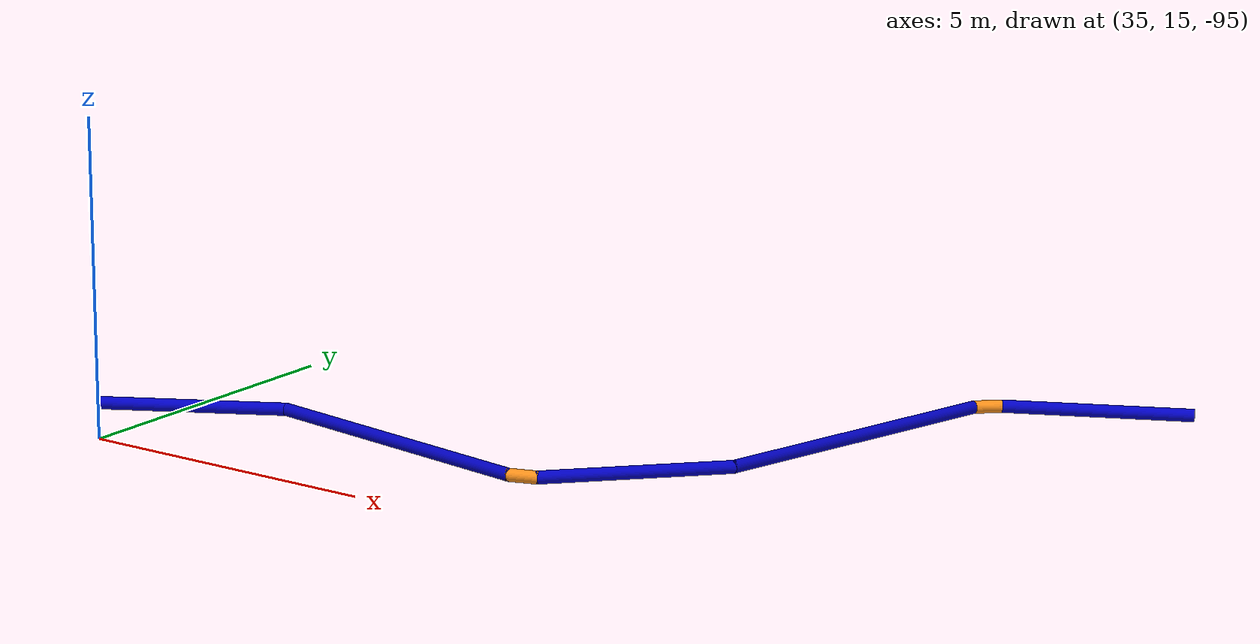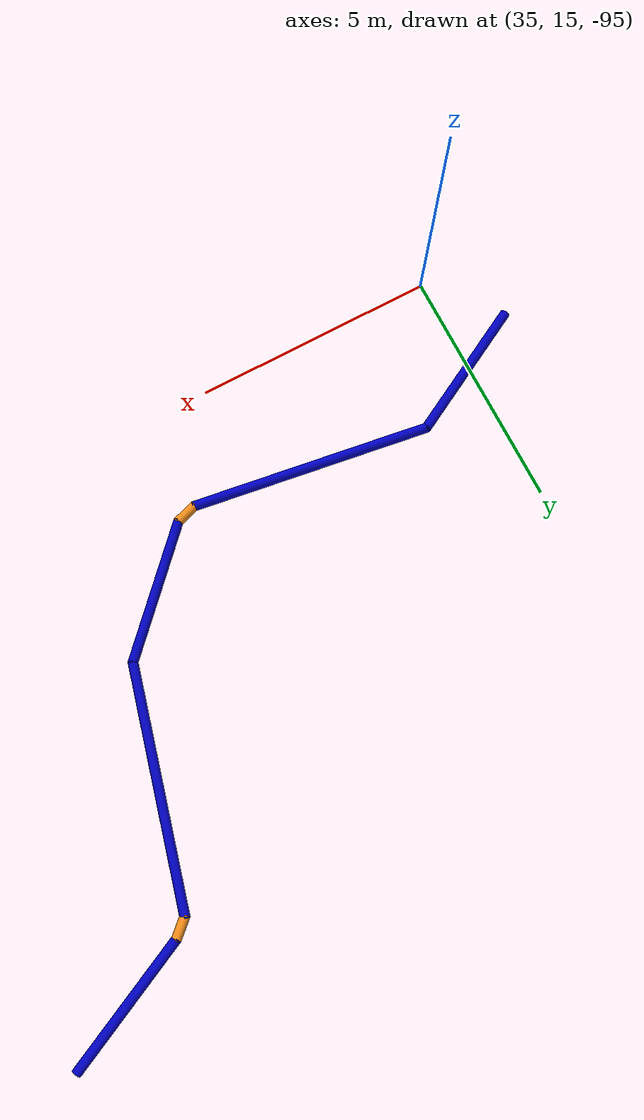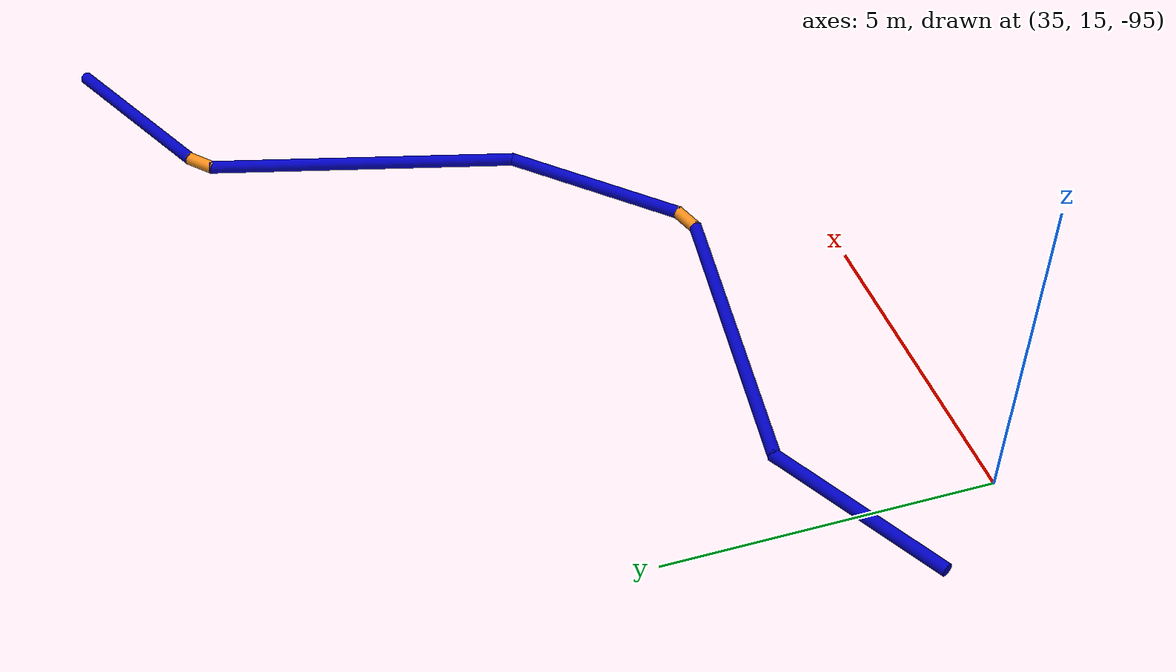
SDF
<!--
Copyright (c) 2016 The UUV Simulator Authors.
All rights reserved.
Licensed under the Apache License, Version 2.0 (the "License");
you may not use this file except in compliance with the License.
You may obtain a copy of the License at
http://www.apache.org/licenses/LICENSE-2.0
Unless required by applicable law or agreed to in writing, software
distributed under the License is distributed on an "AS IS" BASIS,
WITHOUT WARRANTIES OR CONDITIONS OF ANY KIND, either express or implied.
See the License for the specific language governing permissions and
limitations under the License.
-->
<sdf version="1.4">
 <world name="default">
  <physics name="default_physics" default="true" type="ode">
   <max_step_size>0.002</max_step_size>
   <real_time_factor>1</real_time_factor>
   <real_time_update_rate>500</real_time_update_rate>
  </physics>
  <scene>
   <ambient>0.01 0.01 0.01 1.0</ambient>
   <sky><clouds><speed>12</speed></clouds></sky>
   <fog>
    <color>0.1 0.2 0.3 1.0</color>
    <type>linear</type>
    <density>0.1</density>
    <start>10</start>
    <end>40</end>
   </fog>
   <shadows>1</shadows>
  </scene>
  <spherical_coordinates>
   <latitude_deg>56.71897669633431</latitude_deg>
   <longitude_deg>3.515625</longitude_deg>
  </spherical_coordinates>
  <light type="directional" name="sun1">
   <pose>50 0 150 0 0 0</pose>
   <diffuse>1 1 1 1</diffuse>
   <specular>.1 .1 .1 1</specular>
   <direction>0.3 0.3 -1</direction>
   <cast_shadows>false</cast_shadows>
  </light>
  <light type="directional" name="sun_diffuse">
   <pose>-50 0 -150 0 0 0</pose>
   <diffuse>0.6 0.6 0.6 1</diffuse>
   <specular>0 0 0 1</specular>
   <direction>-0.3 -0.3 -1</direction>
   <cast_shadows>false</cast_shadows>
  </light>
  <include>
   <uri>model://pipe</uri>
   <name>pipe_1</name>
   <pose>45.172363 24.1891 -94.955 1.57079 -0.0 -0.8341</pose>
  </include>
  <include>
   <uri>model://pipe</uri>
   <name>pipe_2</name>
   <pose>41.4792 17.0918 -94.955 1.57079 -0.0 -1.2645</pose>
  </include>
  <include>
   <uri>model://pipe_5</uri>
   <name>pipe_3</name>
   <pose>44.3793 21.6634 -94.955 1.57079 -0.0 -0.2607</pose>
  </include>
  <include>
   <uri>model://pipe_5</uri>
   <name>pipe_4</name>
   <pose>38.8212 17.3870 -94.955 1.57079 -0.0 -1.7185</pose>
  </include>
  <include>
   <uri>model://pipe_3</uri>
   <name>pipe_5</name>
   <pose>46.6765 24.9774 -94.955 1.5708 0.0 2.014134</pose>
  </include>
  <include>
   <uri>model://pipe_3</uri>
   <name>pipe_6</name>
   <pose>42.7156 18.2168 -94.955 -1.5708 0.0 2.3712</pose>
  </include>
  <include>
   <uri>model://pipe_3</uri>
   <name>pipe_7</name>
   <pose>35.0878 17.0589 -94.955 1.5708 -0.0 -1.0782</pose>
  </include>
  <plugin name="underwater_current_plugin" filename="libuuv_underwater_current_ros_plugin.so">
   <namespace>hydrodynamics</namespace>
   <constant_current>
    <topic>current_velocity</topic>
    <velocity><mean>0</mean><min>0</min><max>5</max><mu>0.0</mu><noiseAmp>0.0</noiseAmp></velocity>
    <horizontal_angle>
     <mean>0</mean>
     <min>-3.141592653589793238</min>
     <max>3.141592653589793238</max>
     <mu>0.0</mu>
     <noiseAmp>0.0</noiseAmp>
    </horizontal_angle>
    <vertical_angle>
     <mean>0</mean>
     <min>-3.141592653589793238</min>
     <max>3.141592653589793238</max>
     <mu>0.0</mu>
     <noiseAmp>0.0</noiseAmp>
    </vertical_angle>
   </constant_current>
  </plugin>
  <plugin name="sc_interface" filename="libuuv_sc_ros_interface_plugin.so"/>
 </world>
</sdf>

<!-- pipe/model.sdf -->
<sdf version='1.7'>
<model name='pipe'>
      <link name='link'>
        <inertial>
          <mass>6126.11</mass>
          <inertia>
            <ixx>893.39</ixx>
            <ixy>0</ixy>
            <ixz>0</ixz>
            <iyy>893.39</iyy>
            <iyz>0</iyz>
            <izz>765.763</izz>
          </inertia>
          <pose>0 0 0 0 -0 0</pose>
        </inertial>
        <self_collide>0</self_collide>
        <enable_wind>0</enable_wind>
        <kinematic>0</kinematic>
        <pose>0 0 -0 0 -0 0</pose>
        <gravity>1</gravity>
        <visual name='visual'>
          <geometry>
            <cylinder>
              <radius>0.1</radius>
              <length>0.5</length>
            </cylinder>
          </geometry>
          <material>
            <script>
              <name>Gazebo/Orange</name>
              <uri>file://media/materials/scripts/gazebo.material</uri>
            </script>
            <shader type='pixel'>
              <normal_map>__default__</normal_map>
            </shader>
            <ambient>0.0 0.0 0.3 1</ambient>
            <diffuse>0.0 0.0 0.75 1</diffuse>
            <specular>0.01 0.01 0.01 1</specular>
            <emissive>0 0 0 1</emissive>
          </material>
          <pose>0 0 0 0 -0 0</pose>
          <transparency>0</transparency>
          <cast_shadows>1</cast_shadows>
        </visual>
        <collision name='collision'>
          <laser_retro>0</laser_retro>
          <max_contacts>10</max_contacts>
          <pose>0 0 0 0 -0 0</pose>
          <geometry>
            <cylinder>
              <radius>0.1</radius>
              <length>0.5</length>
            </cylinder>
          </geometry>
          <surface>
            <friction>
              <ode>
                <mu>1</mu>
                <mu2>1</mu2>
                <fdir1>0 0 0</fdir1>
                <slip1>0</slip1>
                <slip2>0</slip2>
              </ode>
              <torsional>
                <coefficient>1</coefficient>
                <patch_radius>0</patch_radius>
                <surface_radius>0</surface_radius>
                <use_patch_radius>1</use_patch_radius>
                <ode>
                  <slip>0</slip>
                </ode>
              </torsional>
            </friction>
            <bounce>
              <restitution_coefficient>0</restitution_coefficient>
              <threshold>1e+06</threshold>
            </bounce>
            <contact>
              <collide_without_contact>0</collide_without_contact>
              <collide_without_contact_bitmask>1</collide_without_contact_bitmask>
              <collide_bitmask>1</collide_bitmask>
              <ode>
                <soft_cfm>0</soft_cfm>
                <soft_erp>0.2</soft_erp>
                <kp>1e+13</kp>
                <kd>1</kd>
                <max_vel>0.01</max_vel>
                <min_depth>0</min_depth>
              </ode>
              <bullet>
                <split_impulse>1</split_impulse>
                <split_impulse_penetration_threshold>-0.01</split_impulse_penetration_threshold>
                <soft_cfm>0</soft_cfm>
                <soft_erp>0.2</soft_erp>
                <kp>1e+13</kp>
                <kd>1</kd>
              </bullet>
            </contact>
          </surface>
        </collision>
      </link>
      <static>1</static>
      <allow_auto_disable>1</allow_auto_disable>
      <pose>0.277397 -0.141878 0 0 -0 0</pose>
    </model>
</sdf>

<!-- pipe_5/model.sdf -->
<sdf version='1.7'>
    <model name='pipe_5'>
      <link name='link'>
        <inertial>
          <mass>6126.11</mass>
          <inertia>
            <ixx>893.39</ixx>
            <ixy>0</ixy>
            <ixz>0</ixz>
            <iyy>893.39</iyy>
            <iyz>0</iyz>
            <izz>765.763</izz>
          </inertia>
          <pose>0 0 0 0 -0 0</pose>
        </inertial>
        <self_collide>0</self_collide>
        <enable_wind>0</enable_wind>
        <kinematic>0</kinematic>
        <pose>0 0 -0 0 -0 0</pose>
        <gravity>1</gravity>
        <visual name='visual'>
          <geometry>
            <cylinder>
              <radius>0.1</radius>
              <length>5</length>
            </cylinder>
          </geometry>
          <material>
            <script>
              <name>Gazebo/Grey</name>
              <uri>file://media/materials/scripts/gazebo.material</uri>
            </script>
            <shader type='pixel'>
              <normal_map>__default__</normal_map>
            </shader>
            <ambient>0.0 0.0 0.3 1</ambient>
            <diffuse>0.0 0.0 0.75 1</diffuse>
            <specular>0.01 0.01 0.01 1</specular>
            <emissive>0 0 0 1</emissive>
          </material>
          <pose>0 0 0 0 -0 0</pose>
          <transparency>0</transparency>
          <cast_shadows>1</cast_shadows>
        </visual>
        <collision name='collision'>
          <laser_retro>0</laser_retro>
          <max_contacts>10</max_contacts>
          <pose>0 0 0 0 -0 0</pose>
          <geometry>
            <cylinder>
              <radius>0.1</radius>
              <length>5</length>
            </cylinder>
          </geometry>
          <surface>
            <friction>
              <ode>
                <mu>1</mu>
                <mu2>1</mu2>
                <fdir1>0 0 0</fdir1>
                <slip1>0</slip1>
                <slip2>0</slip2>
              </ode>
              <torsional>
                <coefficient>1</coefficient>
                <patch_radius>0</patch_radius>
                <surface_radius>0</surface_radius>
                <use_patch_radius>1</use_patch_radius>
                <ode>
                  <slip>0</slip>
                </ode>
              </torsional>
            </friction>
            <bounce>
              <restitution_coefficient>0</restitution_coefficient>
              <threshold>1e+06</threshold>
            </bounce>
            <contact>
              <collide_without_contact>0</collide_without_contact>
              <collide_without_contact_bitmask>1</collide_without_contact_bitmask>
              <collide_bitmask>1</collide_bitmask>
              <ode>
                <soft_cfm>0</soft_cfm>
                <soft_erp>0.2</soft_erp>
                <kp>1e+13</kp>
                <kd>1</kd>
                <max_vel>0.01</max_vel>
                <min_depth>0</min_depth>
              </ode>
              <bullet>
                <split_impulse>1</split_impulse>
                <split_impulse_penetration_threshold>-0.01</split_impulse_penetration_threshold>
                <soft_cfm>0</soft_cfm>
                <soft_erp>0.2</soft_erp>
                <kp>1e+13</kp>
                <kd>1</kd>
              </bullet>
            </contact>
          </surface>
        </collision>
      </link>
      <static>1</static>
      <allow_auto_disable>1</allow_auto_disable>
      <pose>0.277397 -0.141878 0 0 -0 0</pose>
    </model>
</sdf>

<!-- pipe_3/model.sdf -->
<sdf version='1.7'>
    <model name='pipe_3'>
      <link name='link'>
        <inertial>
          <mass>6126.11</mass>
          <inertia>
            <ixx>893.39</ixx>
            <ixy>0</ixy>
            <ixz>0</ixz>
            <iyy>893.39</iyy>
            <iyz>0</iyz>
            <izz>765.763</izz>
          </inertia>
          <pose>0 0 0 0 -0 0</pose>
        </inertial>
        <self_collide>0</self_collide>
        <enable_wind>0</enable_wind>
        <kinematic>0</kinematic>
        <pose>0 0 -0 0 -0 0</pose>
        <gravity>1</gravity>
        <visual name='visual'>
          <geometry>
            <cylinder>
              <radius>0.1</radius>
              <length>3</length>
            </cylinder>
          </geometry>
          <material>
            <script>
              <name>Gazebo/Grey</name>
              <uri>file://media/materials/scripts/gazebo.material</uri>
            </script>
            <shader type='pixel'>
              <normal_map>__default__</normal_map>
            </shader>
            <ambient>0.0 0.0 0.3 1</ambient>
            <diffuse>0.0 0.0 0.75 1</diffuse>
            <specular>0.01 0.01 0.01 1</specular>
            <emissive>0 0 0 1</emissive>
          </material>
          <pose>0 0 0 0 -0 0</pose>
          <transparency>0</transparency>
          <cast_shadows>1</cast_shadows>
        </visual>
        <collision name='collision'>
          <laser_retro>0</laser_retro>
          <max_contacts>10</max_contacts>
          <pose>0 0 0 0 -0 0</pose>
          <geometry>
            <cylinder>
              <radius>0.1</radius>
              <length>3</length>
            </cylinder>
          </geometry>
          <surface>
            <friction>
              <ode>
                <mu>1</mu>
                <mu2>1</mu2>
                <fdir1>0 0 0</fdir1>
                <slip1>0</slip1>
                <slip2>0</slip2>
              </ode>
              <torsional>
                <coefficient>1</coefficient>
                <patch_radius>0</patch_radius>
                <surface_radius>0</surface_radius>
                <use_patch_radius>1</use_patch_radius>
                <ode>
                  <slip>0</slip>
                </ode>
              </torsional>
            </friction>
            <bounce>
              <restitution_coefficient>0</restitution_coefficient>
              <threshold>1e+06</threshold>
            </bounce>
            <contact>
              <collide_without_contact>0</collide_without_contact>
              <collide_without_contact_bitmask>1</collide_without_contact_bitmask>
              <collide_bitmask>1</collide_bitmask>
              <ode>
                <soft_cfm>0</soft_cfm>
                <soft_erp>0.2</soft_erp>
                <kp>1e+13</kp>
                <kd>1</kd>
                <max_vel>0.01</max_vel>
                <min_depth>0</min_depth>
              </ode>
              <bullet>
                <split_impulse>1</split_impulse>
                <split_impulse_penetration_threshold>-0.01</split_impulse_penetration_threshold>
                <soft_cfm>0</soft_cfm>
                <soft_erp>0.2</soft_erp>
                <kp>1e+13</kp>
                <kd>1</kd>
              </bullet>
            </contact>
          </surface>
        </collision>
      </link>
      <static>1</static>
      <allow_auto_disable>1</allow_auto_disable>
      <pose>0.277397 -0.141878 0 0 -0 0</pose>
    </model>
</sdf>
